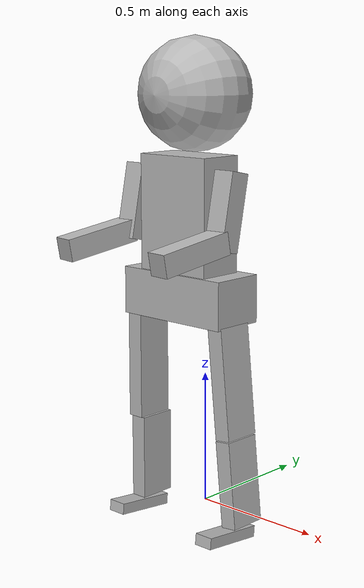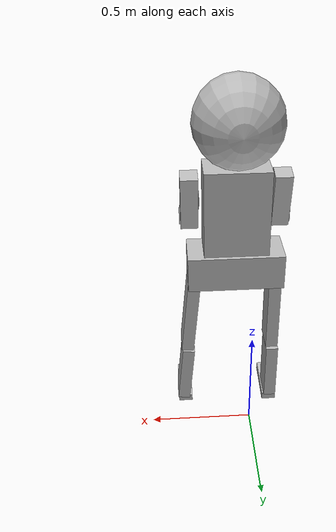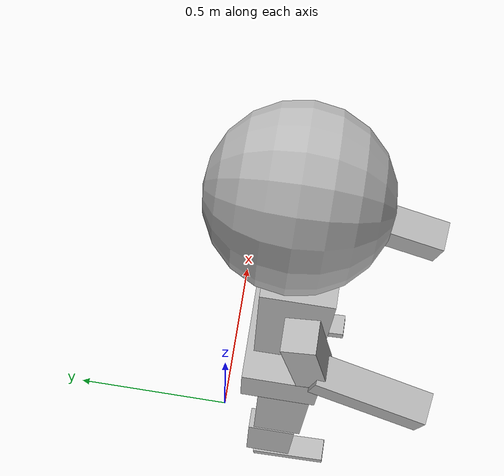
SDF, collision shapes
<sdf version="1.6">
    <model name="legs_with_upper_body">
        <pose frame="">0 0 0.07 0 0 0</pose> <!-- Raise the model a bit above the ground -->
        <self_collide>true</self_collide> <!-- Enable collision between links -->
        <link name="hip">
            <pose frame="">0 0 0.6 0 -0 0</pose>
            <inertial>
                <pose frame="">0.074697 -0.137093 0.149689 0 -0 0</pose>
                <mass>0.912006</mass>
                <inertia>
                    <ixx>0.00265949</ixx>
                    <ixy>-2.2591e-06</ixy>
                    <ixz>-4.48767e-06</ixz>
                    <iyy>0.00838367</iyy>
                    <iyz>7.77578e-05</iyz>
                    <izz>0.00768159</izz>
                </inertia>
            </inertial>
            <collision name="hip_collision">
                <pose frame="">0.075 -0.165 0.17 0 -0 0</pose>
                <geometry>
                    <box>
                        <size>0.45 0.2 0.17</size>
                    </box>
                </geometry>
            </collision>
            <visual name="hip_visual">
                <pose frame="">0 0 0 0 -0 0</pose>
                <geometry>
                    <mesh>
                        <scale>1 1 1</scale>
                        <uri>model://legs_with_upper_body/cad/hip.STL</uri>
                    </mesh>
                </geometry>
            </visual>
        </link>
        <link name="thigh_left">
            <pose frame="">0.26602 -0.18208 0.72048 1.5708 -0 0</pose>
            <inertial>
                <pose frame="">0.012503 -0.130072 -0.003616 0 -0 0</pose>
                <mass>0.28282</mass>
                <inertia>
                    <ixx>0.00951009</ixx>
                    <ixy>0.000577517</ixy>
                    <ixz>6.83881e-06</ixz>
                    <iyy>0.000275352</iyy>
                    <iyz>-0.000187544</iyz>
                    <izz>0.00951982</izz>
                </inertia>
            </inertial>
            <collision name="thigh_left_collision">
                <pose frame="">0.02 -0.19 0 0 -0 0.1</pose>
                <geometry>
                    <box>
                        <size>0.06 0.47 0.14</size>
                    </box>
                </geometry>
            </collision>
            <visual name="thigh_left_visual">
                <pose frame="">0 0 0 0 -0 0</pose>
                <geometry>
                    <mesh>
                        <scale>1 1 1</scale>
                        <uri>model://legs_with_upper_body/cad/thigh_left.STL</uri>
                    </mesh>
                </geometry>
            </visual>
        </link>
        <joint name="groin_left" type="revolute">
            <child>thigh_left</child>
            <parent>hip</parent>
            <axis>
                <xyz>-1 0 0</xyz>
                <limit>
                    <!-- Allow the thighs to move about 90 degrees to both directions -->
                    <lower>-1.57</lower>
                    <upper>1.57</upper>
                </limit>
                <dynamics>
                    <spring_reference>0</spring_reference>
                    <spring_stiffness>10</spring_stiffness>
                </dynamics>
                <use_parent_model_frame>1</use_parent_model_frame>
            </axis>
        </joint>
        <link name="shank_left">
            <pose frame="">0.299338 -0.156192 0.32533 1.5708 -0 0</pose>
            <inertial>
                <pose frame="">0.013472 -0.183195 0.021956 0 -0 0</pose>
                <mass>0.206586</mass>
                <inertia>
                    <ixx>0.00152376</ixx>
                    <ixy>7.90604e-05</ixy>
                    <ixz>4.43767e-07</ixz>
                    <iyy>9.2418e-05</iyy>
                    <iyz>-7.50876e-06</iyz>
                    <izz>0.00154952</izz>
                </inertia>
            </inertial>
            <collision name="shank_left_collision">
                <pose frame="">0.02 -0.19 0.02 0 -0 0.1</pose>
                <geometry>
                    <box>
                        <size>0.06 0.31 0.14</size>
                    </box>
                </geometry>
            </collision>
            <visual name="shank_left_visual">
                <pose frame="">0 0 0 0 -0 0</pose>
                <geometry>
                    <mesh>
                        <scale>1 1 1</scale>
                        <uri>model://legs_with_upper_body/cad/shank_left.STL</uri>
                    </mesh>
                </geometry>
            </visual>
        </link>
        <joint name="knee_left" type="revolute">
            <child>shank_left</child>
            <parent>thigh_left</parent>
            <axis>
                <xyz>-0.99647 0.000425 -0.083991</xyz>
                <limit>
                    <!-- Allow the knee to be straight or about 135 degrees to the backward direction -->
                    <lower>-2.355</lower>
                    <upper>0.0</upper>
                    <effort>0</effort>
                    <velocity>0</velocity>
                </limit>
                <dynamics>
                    <spring_reference>0</spring_reference>
                    <spring_stiffness>0</spring_stiffness>
                </dynamics>
                <use_parent_model_frame>1</use_parent_model_frame>
            </axis>
        </joint>
        <link name="foot_left">
            <pose frame="">0.322069 -0.177579 0.028750 1.5708 -0 0</pose>
            <inertial>
                <pose frame="">0.002729 -0.048488 0.049447 0 -0 0</pose>
                <mass>0.147998</mass>
                <inertia>
                    <ixx>0.00077239</ixx>
                    <ixy>3.63378e-06</ixy>
                    <ixz>2.62883e-05</ixz>
                    <iyy>0.000730932</iyy>
                    <iyz>9.57127e-05</iyz>
                    <izz>0.000114218</izz>
                </inertia>
            </inertial>
            <collision name="foot_left_collision">
                <pose frame="">0.004 -0.07 0.075 -0.1 -0 0</pose>
                <geometry>
                    <box>
                        <size>0.07 0.04 0.23</size>
                    </box>
                </geometry>
            </collision>
            <visual name="foot_left_visual">
                <pose frame="">0 0 0 0 -0 0</pose>
                <geometry>
                    <mesh>
                        <scale>1 1 1</scale>
                        <uri>model://legs_with_upper_body/cad/foot_left.STL</uri>
                    </mesh>
                </geometry>
            </visual>
        </link>
        <joint name="ankle_left" type="revolute">
            <child>foot_left</child>
            <parent>shank_left</parent>
            <axis>
                <xyz>0.99647 -0.000425 0.083991</xyz>
                <limit>
                    <!-- Allow the foot to rotate 45 degrees to both directions -->
                    <lower>-0.784</lower>
                    <upper>0.784</upper>
                    <effort>0</effort>
                    <velocity>0</velocity>
                </limit>
                <dynamics>
                    <spring_reference>0</spring_reference>
                    <spring_stiffness>00</spring_stiffness>
                </dynamics>
                <use_parent_model_frame>1</use_parent_model_frame>
            </axis>
            <sensor name="force_torque_ankle_left" type="force_torque">
                <plugin filename="libforce_torque_plugin.so" name="force_torque_ankle_left" />
                <update_rate>1000</update_rate>
            </sensor>
        </joint>
        <link name="thigh_right">
            <pose frame="">-0.11698 -0.18208 0.72048 1.5708 -0 0</pose>
            <inertial>
                <pose frame="">-0.00501 -0.130551 -0.0053 0 -0 0</pose>
                <mass>0.282818</mass>
                <inertia>
                    <ixx>0.00954136</ixx>
                    <ixy>-4.91251e-05</ixy>
                    <ixz>-7.12832e-06</ixz>
                    <iyy>0.000257517</iyy>
                    <iyz>-0.000448534</iyz>
                    <izz>0.00949739</izz>
                </inertia>
            </inertial>
            <collision name="thigh_right_collision">
                <pose frame="">0 -0.19 0 0 -0 0</pose>
                <geometry>
                    <box>
                        <size>0.06 0.47 0.14</size>
                    </box>
                </geometry>
            </collision>
            <visual name="thigh_right_visual">
                <pose frame="">0 0 0 0 -0 0</pose>
                <geometry>
                    <mesh>
                        <scale>1 1 1</scale>
                        <uri>model://legs_with_upper_body/cad/thigh_right.STL</uri>
                    </mesh>
                </geometry>
            </visual>
        </link>
        <joint name="groin_right" type="revolute">
            <child>thigh_right</child>
            <parent>hip</parent>
            <axis>
                <xyz>1 0 0</xyz>
                <limit>
                    <!-- Allow the thighs to move about 90 degrees to both directions -->
                    <lower>-1.57</lower>
                    <upper>1.57</upper>
                </limit>
                <dynamics>
                    <spring_reference>0</spring_reference>
                    <spring_stiffness>10</spring_stiffness>
                </dynamics>
                <use_parent_model_frame>1</use_parent_model_frame>
            </axis>
        </joint>
        <link name="shank_right">
            <pose frame="">-0.119206 -0.147022 0.32476 1.5708 -0 0</pose>
            <inertial>
                <pose frame="">-0.002982 -0.184125 0.017684 0 -0 0</pose>
                <mass>0.206586</mass>
                <inertia>
                    <ixx>0.00152637</ixx>
                    <ixy>-4.98998e-05</ixy>
                    <ixz>-1.37946e-06</ixz>
                    <iyy>9.09329e-05</iyy>
                    <iyz>-4.13969e-05</iyz>
                    <izz>0.00154838</izz>
                </inertia>
            </inertial>
            <collision name="shank_right_collision">
                <pose frame="">0 -0.19 0.02 0 -0 0</pose>
                <geometry>
                    <box>
                        <size>0.06 0.31 0.14</size>
                    </box>
                </geometry>
            </collision>
            <visual name="shank_right_visual">
                <pose frame="">0 0 0 0 -0 0</pose>
                <geometry>
                    <mesh>
                        <scale>1 1 1</scale>
                        <uri>model://legs_with_upper_body/cad/shank_right.STL</uri>
                    </mesh>
                </geometry>
            </visual>
        </link>
        <joint name="knee_right" type="revolute">
            <child>shank_right</child>
            <parent>thigh_right</parent>
            <axis>
                <xyz>-0.99998 -0.000187 0.005609</xyz>
                <limit>
                    <!-- Allow the knee to be straight or about 135 degrees to the backward direction -->
                    <lower>-2.355</lower>
                    <upper>0.0</upper>
                    <effort>0</effort>
                    <velocity>0</velocity>
                </limit>
                <dynamics>
                    <spring_reference>0</spring_reference>
                    <spring_stiffness>0</spring_stiffness>
                </dynamics>
                <use_parent_model_frame>1</use_parent_model_frame>
            </axis>
        </joint>
        <link name="foot_right">
            <pose frame="">-0.123124 -0.161494 0.026920 1.5708 -0 0</pose>
            <inertial>
                <pose frame="">0.002734 -0.051324 0.046584 0 -0 0</pose>
                <mass>0.148007</mass>
                <inertia>
                    <ixx>0.000772969</ixx>
                    <ixy>7.73785e-06</ixy>
                    <ixz>-4.08482e-05</ixz>
                    <iyy>0.000718686</iyy>
                    <iyz>0.000128153</iyz>
                    <izz>0.000127654</izz>
                </inertia>
            </inertial>
            <collision name="foot_right_collision">
                <pose frame="">0.004 -0.07 0.075 -0.1 -0 0</pose>
                <geometry>
                    <box>
                        <size>0.07 0.04 0.23</size>
                    </box>
                </geometry>
            </collision>
            <visual name="foot_right_visual">
                <pose frame="">0 0 0 0 -0 0</pose>
                <geometry>
                    <mesh>
                        <scale>1 1 1</scale>
                        <uri>model://legs_with_upper_body/cad/foot_right.STL</uri>
                    </mesh>
                </geometry>
            </visual>
        </link>
        <joint name="ankle_right" type="revolute">
            <child>foot_right</child>
            <parent>shank_right</parent>
            <axis>
                <xyz>0.99998 0.000187 -0.005609</xyz>
                <limit>
                    <!-- Allow the foot to rotate 45 degrees to both directions -->
                    <lower>-0.784</lower>
                    <upper>0.784</upper>
                    <effort>0</effort>
                    <velocity>0</velocity>
                </limit>
                <dynamics>
                    <spring_reference>0</spring_reference>
                    <spring_stiffness>0</spring_stiffness>
                </dynamics>
                <use_parent_model_frame>1</use_parent_model_frame>
            </axis>
            <sensor name="force_torque_ankle_right" type="force_torque">
                <plugin filename="libforce_torque_plugin.so" name="force_torque_ankle_right" />
                <update_rate>1000</update_rate>
            </sensor>
        </joint>
        <link name="torso">
            <pose frame="">0.074525 -0.14495 0.78449 1.5708 -0 0</pose>
            <inertial>
                <pose frame="">-0.000168 0.343675 0.021472 0 -0 0</pose>
                <mass>2.25438</mass>
                <inertia>
                    <ixx>0.0367936</ixx>
                    <ixy>-1.13728e-05</ixy>
                    <ixz>0.00024704</ixz>
                    <iyy>0.0385755</iyy>
                    <iyz>-0.0013766</iyz>
                    <izz>0.0668758</izz>
                </inertia>
            </inertial>
            <collision name="torso_collision">
                <pose frame="">0 0.27 0.025 0 -0 0</pose>
                <geometry>
                    <box>
                        <size>0.3 0.42 0.17</size>
                    </box>
                </geometry>
            </collision>
            <visual name="torso_visual">
                <pose frame="">0 0 0 0 -0 0</pose>
                <geometry>
                    <mesh>
                        <scale>1 1 1</scale>
                        <uri>model://legs_with_upper_body/cad/torso.STL</uri>
                    </mesh>
                </geometry>
            </visual>
        </link>
        <joint name="spine" type="revolute">
            <child>torso</child>
            <parent>hip</parent>
            <axis>
                <xyz>0 -0.104534 0.99452</xyz>
                <limit>
                    <!-- Allow the spine to rotate about 90 degrees to both directions -->
                    <lower>-1.57</lower>
                    <upper>1.57</upper>
                </limit>
                <dynamics>
                    <spring_reference>0</spring_reference>
                    <spring_stiffness>0</spring_stiffness>
                </dynamics>
                <use_parent_model_frame>1</use_parent_model_frame>
            </axis>
        </joint>
        <joint name="world" type="revolute">
            <child>head</child>
            <parent>world</parent>
            <axis>
                <xyz>0 0 0</xyz>
                <limit>
                    <lower>-2</lower>
                    <upper>2</upper>
                </limit>
                <use_parent_model_frame>1</use_parent_model_frame>
            </axis>
        </joint>
        <link name="head">
            <pose frame="">0.074204 -0.157589 1.2705 1.5708 -0 0</pose>
            <inertial>
                <pose frame="">0.001111 0.229897 0.009217 0 -0 0</pose>
                <mass>1.21204</mass>
                <inertia>
                    <ixx>0.0276559</ixx>
                    <ixy>-0.000270646</ixy>
                    <ixz>0.000298512</ixz>
                    <iyy>0.0232183</iyy>
                    <iyz>0.00396807</iyz>
                    <izz>0.021933</izz>
                </inertia>
            </inertial>
            <collision name="head_collision">
                <pose frame="">0 0.2 -0.02 0 -0 0</pose>
                <geometry>
                    <sphere>
                        <radius>0.2</radius>
                    </sphere>
                </geometry>
            </collision>
            <visual name="head_visual">
                <pose frame="">0 0 0 0 -0 0</pose>
                <geometry>
                    <mesh>
                        <scale>1 1 1</scale>
                        <uri>model://legs_with_upper_body/cad/head.STL</uri>
                    </mesh>
                </geometry>
            </visual>
        </link>
        <joint name="neck" type="revolute">
            <child>head</child>
            <parent>torso</parent>
            <axis>
                <xyz>0.000877 4e-06 -1</xyz>
                <limit>
                    <!-- Allow the neck to rotate about 90 degrees to both directions -->
                    <lower>-1.57</lower>
                    <upper>1.57</upper>
                </limit>
                <dynamics>
                    <spring_reference>0</spring_reference>
                    <spring_stiffness>0</spring_stiffness>
                </dynamics>
                <use_parent_model_frame>1</use_parent_model_frame>
            </axis>
        </joint>
        <link name="oberarm_left">
            <pose frame="">0.284515 -0.180532 1.20727 1.5708 -0 0</pose>
            <inertial>
                <pose frame="">-0.005048 -0.123167 0.022752 0 -0 0</pose>
                <mass>0.386426</mass>
                <inertia>
                    <ixx>0.0015069</ixx>
                    <ixy>-6.37549e-05</ixy>
                    <ixz>2.39909e-05</ixz>
                    <iyy>0.00027596</iyy>
                    <iyz>0.000274864</iyz>
                    <izz>0.00153205</izz>
                </inertia>
            </inertial>
            <collision name="oberarm_left_collision">
                <pose frame="">0 -0.12 0.03 -0.2 -0 0</pose>
                <geometry>
                    <box>
                        <size>0.08 0.27 0.08</size>
                    </box>
                </geometry>
            </collision>
            <visual name="oberarm_left_visual">
                <pose frame="">0 0 0 0 -0 0</pose>
                <geometry>
                    <mesh>
                        <scale>1 1 1</scale>
                        <uri>model://legs_with_upper_body/cad/oberarm_left.STL</uri>
                    </mesh>
                </geometry>
            </visual>
        </link>
        <joint name="shoulder_left" type="revolute">
            <child>oberarm_left</child>
            <parent>torso</parent>
            <axis>
                <xyz>0.034382 0.221926 0.974461</xyz>
                <limit>
                    <lower>-1e+16</lower>
                    <upper>1e+16</upper>
                </limit>
                <dynamics>
                    <spring_reference>0</spring_reference>
                    <spring_stiffness>0</spring_stiffness>
                </dynamics>
                <use_parent_model_frame>1</use_parent_model_frame>
            </axis>
        </joint>
        <link name="unterarm_left">
            <pose frame="">0.276892 -0.229767 0.99127 1.5708 -0 0</pose>
            <inertial>
                <pose frame="">0.000151419 -0.0464614 0.13841 0 -0 0</pose>
                <mass>0.248551</mass>
                <inertia>
                    <ixx>0.00977276</ixx>
                    <ixy>-0.00015014</ixy>
                    <ixz>0.000389391</ixz>
                    <iyy>0.0091178</iyy>
                    <iyz>0.00257367</iyz>
                    <izz>0.000991918</izz>
                </inertia>
            </inertial>
            <collision name="unterarm_left_collision">
                <pose frame="">0 -0.025 0.15 -1.4 -0.1 0</pose>
                <geometry>
                    <box>
                        <size>0.08 0.28 0.08</size>
                    </box>
                </geometry>
            </collision>
            <visual name="unterarm_left_visual">
                <pose frame="">0 0 0 0 -0 0</pose>
                <geometry>
                    <mesh>
                        <scale>1 1 1</scale>
                        <uri>model://legs_with_upper_body/cad/unterarm_left.STL</uri>
                    </mesh>
                </geometry>
            </visual>
        </link>
        <joint name="elbow_left" type="revolute">
            <child>unterarm_left</child>
            <parent>oberarm_left</parent>
            <axis>
                <xyz>-0.99895 0.037106 0.026795</xyz>
                <limit>
                    <!-- Allow the elbow to be between straight and 135 degrees to the forward direction.
                         The elbow's zero position has about 45 degrees offset from being straight. -->
                    <lower>-0.785</lower>
                    <upper>1.57</upper>
                    <effort>0</effort>
                    <velocity>0</velocity>
                </limit>
                <dynamics>
                    <spring_reference>0</spring_reference>
                    <spring_stiffness>0</spring_stiffness>
                </dynamics>
                <use_parent_model_frame>1</use_parent_model_frame>
            </axis>
        </joint>
        <link name="oberarm_right">
            <pose frame="">-0.135425 -0.18406 1.2069 1.5708 -0 0</pose>
            <inertial>
                <pose frame="">-0.004242 -0.121908 0.019506 0 -0 0</pose>
                <mass>0.386419</mass>
                <inertia>
                    <ixx>0.0015603</ixx>
                    <ixy>-5.69364e-05</ixy>
                    <ixz>-4.23856e-05</ixz>
                    <iyy>0.000347529</iyy>
                    <iyz>0.00025873</iyz>
                    <izz>0.00160917</izz>
                </inertia>
            </inertial>
            <collision name="oberarm_right_collision">
                <pose frame="">0 -0.12 0.03 -0.2 -0 0</pose>
                <geometry>
                    <box>
                        <size>0.08 0.27 0.08</size>
                    </box>
                </geometry>
            </collision>
            <visual name="oberarm_right_visual">
                <pose frame="">0 0 0 0 -0 0</pose>
                <geometry>
                    <mesh>
                        <scale>1 1 1</scale>
                        <uri>model://legs_with_upper_body/cad/oberarm_right.STL</uri>
                    </mesh>
                </geometry>
            </visual>
        </link>
        <joint name="shoulder_right" type="revolute">
            <child>oberarm_right</child>
            <parent>torso</parent>
            <axis>
                <xyz>0.057713 0.209236 0.976161</xyz>
                <limit>
                    <lower>-1e+16</lower>
                    <upper>1e+16</upper>
                </limit>
                <dynamics>
                    <spring_reference>0</spring_reference>
                    <spring_stiffness>0</spring_stiffness>
                </dynamics>
                <use_parent_model_frame>1</use_parent_model_frame>
            </axis>
        </joint>
        <link name="unterarm_right">
            <pose frame="">-0.148223 -0.230483 0.99052 1.5708 -0 0</pose>
            <inertial>
                <pose frame="">-0.018749 -0.046026 0.137113 0 -0 0</pose>
                <mass>0.218428</mass>
                <inertia>
                    <ixx>0.00171929</ixx>
                    <ixy>-8.86066e-06</ixy>
                    <ixz>0.000174757</ixz>
                    <iyy>0.0017063</iyy>
                    <iyz>0.00033154</iyz>
                    <izz>0.000228066</izz>
                </inertia>
            </inertial>
            <collision name="unterarm_right_collision">
                <pose frame="">-0.02 -0.025 0.15 -1.4 -0.15 0</pose>
                <geometry>
                    <box>
                        <size>0.08 0.28 0.08</size>
                    </box>
                </geometry>
            </collision>
            <visual name="unterarm_right_visual">
                <pose frame="">0 0 0 0 -0 0</pose>
                <geometry>
                    <mesh>
                        <scale>1 1 1</scale>
                        <uri>model://legs_with_upper_body/cad/unterarm_right.STL</uri>
                    </mesh>
                </geometry>
            </visual>
        </link>
        <joint name="elbow_right" type="revolute">
            <child>unterarm_right</child>
            <parent>oberarm_right</parent>
            <axis>
                <xyz>0.99278 -0.11505 -0.034035</xyz>
                <limit>
                    <!-- Allow the elbow to be between straight and 135 degrees to the forward direction.
                         The elbow's zero position has about 45 degrees offset from being straight. -->
                    <lower>-0.785</lower>
                    <upper>1.57</upper>
                    <effort>0</effort>
                    <velocity>0</velocity>
                </limit>
                <dynamics>
                    <spring_reference>0</spring_reference>
                    <spring_stiffness>0</spring_stiffness>
                </dynamics>
                <use_parent_model_frame>1</use_parent_model_frame>
            </axis>
        </joint>

        <plugin filename="libWalkController.so" name="walkController">
            <myoMuscle name="motor0">
                <link name="hip">
                    <viaPoint type="FIXPOINT">0.247082 -0.230700 0.187989</viaPoint>
                </link>
                <link name="thigh_left">
                    <viaPoint type="FIXPOINT">0.002976 -0.053824 0.021931</viaPoint>
                </link>
                <spanningJoint name="groin_left">extensor</spanningJoint>
            </myoMuscle>

            <myoMuscle name="motor1">
                <link name="hip">
                    <viaPoint type="FIXPOINT">0.294277 -0.181648 0.205889</viaPoint>
                </link>
                <link name="thigh_left">
                    <viaPoint type="FIXPOINT">0.027028 -0.053905 -0.003257</viaPoint>
                </link>
                <spanningJoint name="groin_left">extensor</spanningJoint>
            </myoMuscle>

            <myoMuscle name="motor2">
                <link name="hip">
                    <viaPoint type="FIXPOINT">0.250200 -0.132400 0.174692</viaPoint>
                </link>
                <link name="thigh_left">
                    <viaPoint type="FIXPOINT">0.004458 -0.055707 -0.022954</viaPoint>
                </link>
                <spanningJoint name="groin_left">extensor</spanningJoint>
            </myoMuscle>

            <myoMuscle name="motor3">
                <link name="thigh_left">
                    <viaPoint type="FIXPOINT">-0.044232 -0.102981 -0.003080</viaPoint>
                </link>
                <link name="hip">
                    <viaPoint type="FIXPOINT">0.219221 -0.185373 0.111369</viaPoint>
                </link>
                <spanningJoint name="groin_left">flexor</spanningJoint>
            </myoMuscle>

            <myoMuscle name="motor4">
                <link name="thigh_left">
                    <viaPoint type="FIXPOINT">0.025865 -0.317187 0.030588</viaPoint>
                </link>
                <link name="shank_left">
                    <viaPoint type="FIXPOINT">0.003903 -0.042379 0.045603</viaPoint>
                </link>
                <spanningJoint name="knee_left">extensor</spanningJoint>
            </myoMuscle>

            <myoMuscle name="motor5">
                <link name="thigh_left">
                    <viaPoint type="FIXPOINT">0.026181 -0.317907 -0.035673</viaPoint>
                </link>
                <link name="shank_left">
                    <viaPoint type="FIXPOINT">0.002484 -0.041575 -0.001379</viaPoint>
                </link>
                <spanningJoint name="knee_left">flexor</spanningJoint>
            </myoMuscle>

            <myoMuscle name="motor6">
                <link name="shank_left">
                    <viaPoint type="FIXPOINT">0.016917 -0.220031 0.054626</viaPoint>
                </link>
                <link name="foot_left">
                    <viaPoint type="FIXPOINT">0.000179 -0.016738 0.045777</viaPoint>
                </link>
                <spanningJoint name="ankle_left">extensor</spanningJoint>
            </myoMuscle>

            <myoMuscle name="motor7">
                <link name="shank_left">
                    <viaPoint type="FIXPOINT">0.016952 -0.218082 -0.010159</viaPoint>
                </link>
                <link name="foot_left">
                    <viaPoint type="FIXPOINT">0.000958 -0.032293 -0.037402</viaPoint>
                </link>
                <spanningJoint name="ankle_left">flexor</spanningJoint>
            </myoMuscle>

            <myoMuscle name="motor8">
                <link name="hip">
                    <viaPoint type="FIXPOINT">-0.100846 -0.231827 0.188380</viaPoint>
                </link>
                <link name="thigh_right">
                    <viaPoint type="FIXPOINT">-0.001855 -0.056490 0.023587</viaPoint>
                </link>
                <spanningJoint name="groin_right">extensor</spanningJoint>
            </myoMuscle>

            <myoMuscle name="motor9">
                <link name="hip">
                    <viaPoint type="FIXPOINT">-0.145195 -0.182566 0.205895</viaPoint>
                </link>
                <link name="thigh_right">
                    <viaPoint type="FIXPOINT">-0.024867 -0.055771 -0.000712</viaPoint>
                </link>
                <spanningJoint name="groin_right">extensor</spanningJoint>
            </myoMuscle>

            <myoMuscle name="motor10">
                <link name="hip">
                    <viaPoint type="FIXPOINT">-0.101548 -0.133141 0.174415</viaPoint>
                </link>
                <link name="thigh_right">
                    <viaPoint type="FIXPOINT">0.000873 -0.054580 -0.025163</viaPoint>
                </link>
                <spanningJoint name="groin_right">extensor</spanningJoint>
            </myoMuscle>

            <myoMuscle name="motor11">
                <link name="thigh_right">
                    <viaPoint type="FIXPOINT">0.051667 -0.098849 -0.000740</viaPoint>
                </link>
                <link name="hip">
                    <viaPoint type="FIXPOINT">-0.066086 -0.181819 0.110564</viaPoint>
                </link>
                <spanningJoint name="groin_right">flexor</spanningJoint>
            </myoMuscle>

            <myoMuscle name="motor12">
                <link name="thigh_right">
                    <viaPoint type="FIXPOINT">-0.001337 -0.320600 0.023356</viaPoint>
                </link>
                <link name="shank_right">
                    <viaPoint type="FIXPOINT">0.003023 -0.043558 0.042317</viaPoint>
                </link>
                <spanningJoint name="knee_right">extensor</spanningJoint>
            </myoMuscle>

            <myoMuscle name="motor13">
                <link name="thigh_right">
                    <viaPoint type="FIXPOINT">-0.001345 -0.318244 -0.042597</viaPoint>
                </link>
                <link name="shank_right">
                    <viaPoint type="FIXPOINT">-0.001614 -0.040825 -0.003000</viaPoint>
                </link>
                <spanningJoint name="knee_right">flexor</spanningJoint>
            </myoMuscle>

            <myoMuscle name="motor14">
                <link name="shank_right">
                    <viaPoint type="FIXPOINT">-0.002155 -0.221186 -0.014604</viaPoint>
                </link>
                <link name="foot_right">
                    <viaPoint type="FIXPOINT">0.003852 -0.027890 -0.039899</viaPoint>
                </link>
                <spanningJoint name="ankle_right">extensor</spanningJoint>
            </myoMuscle>

            <myoMuscle name="motor15">
                <link name="shank_right">
                    <viaPoint type="FIXPOINT">-0.002616 -0.221855 0.048458</viaPoint>
                </link>
                <link name="foot_right">
                    <viaPoint type="FIXPOINT">0.001763 -0.018637 0.046467</viaPoint>
                </link>
                <spanningJoint name="ankle_right">flexor</spanningJoint>
            </myoMuscle>

            <foot_sole_left>0 0 -0.1085</foot_sole_left>
            <foot_sole_right>0 0 -0.1085</foot_sole_right>
        </plugin>
    </model>
</sdf>
